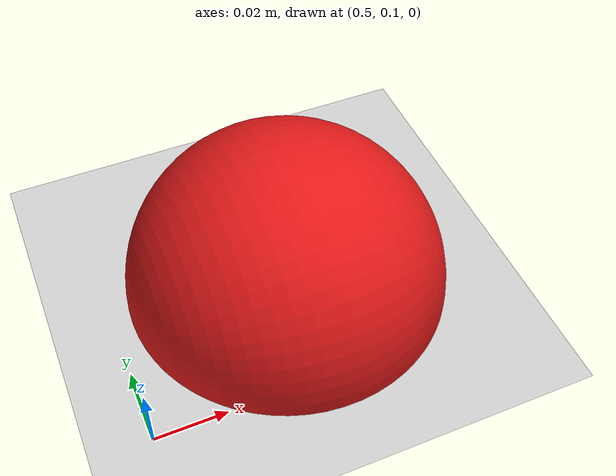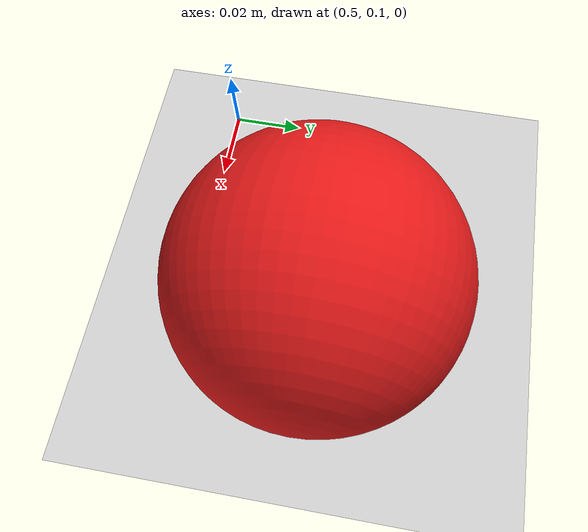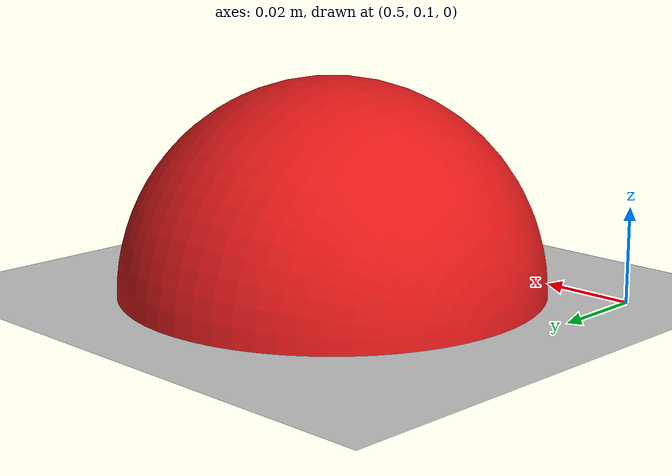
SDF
<?xml version="1.0" ?>
<sdf version="1.7">
  <world name="contact_dome">
    <light name="sun" type="directional">
      <pose>0 0 10 0 0 0</pose>
      <diffuse>1 1 1 1</diffuse>
      <specular>0.1 0.1 0.1 1</specular>
      <attenuation>
        <range>1000</range>
        <linear>0.1</linear>
        <constant>0.9</constant>
        <quadratic>0.01</quadratic>
      </attenuation>
      <direction>-0.5 0.5 -1</direction>
    </light>

    <model name="ground_plane">
      <static>true</static>
      <pose>0 0 0 0 0 0</pose>
      <link name="link">
        <collision name="collision">
          <geometry>
            <plane>
              <normal>0 0 1</normal>
              <size>100 100</size>
            </plane>
          </geometry>
        </collision>
        <visual name="visual">
          <cast_shadows>false</cast_shadows>
          <geometry>
            <plane>
              <normal>0 0 1</normal>
              <size>100 100</size>
            </plane>
          </geometry>
          <material>
            <ambient>0.8 0.8 0.8 1</ambient>
            <diffuse>0.8 0.8 0.8 1</diffuse>
          </material>
        </visual>
      </link>
    </model>

    <model name="contact_dome">
      <static>true</static>
      <pose>0.55 0.135 0 0 0 0</pose>
      <link name="dome_link">
        <visual name="visual">
          <geometry>
            <mesh>
              <uri>meshes/dome.stl</uri>
              <scale>1 1 1</scale>
            </mesh>
          </geometry>
          <material>
            <ambient>0.8 0.1 0.1 1.0</ambient>
            <diffuse>0.9 0.1 0.1 1.0</diffuse>
          </material>
        </visual>
        <collision name="collision">
          <geometry>
            <mesh>
              <uri>meshes/dome.stl</uri>
              <scale>1 1 1</scale>
            </mesh>
          </geometry>
          <surface>
            <contact>
              <!-- Soften contact to behave like a spring-damper (F ≈ kp*x - kd*xdot) -->
              <ode>
                <!-- Lower stiffness to reduce 0→260 N spikes on first contact -->
                <kp>20000.0</kp>
                <kd>50.0</kd>
                <min_depth>0.001</min_depth>
              </ode>
            </contact>
            <friction>
              <ode>
                <mu>0.8</mu>
                <mu2>0.8</mu2>
              </ode>
            </friction>
          </surface>
        </collision>
      </link>
    </model>
  </world>
</sdf>
